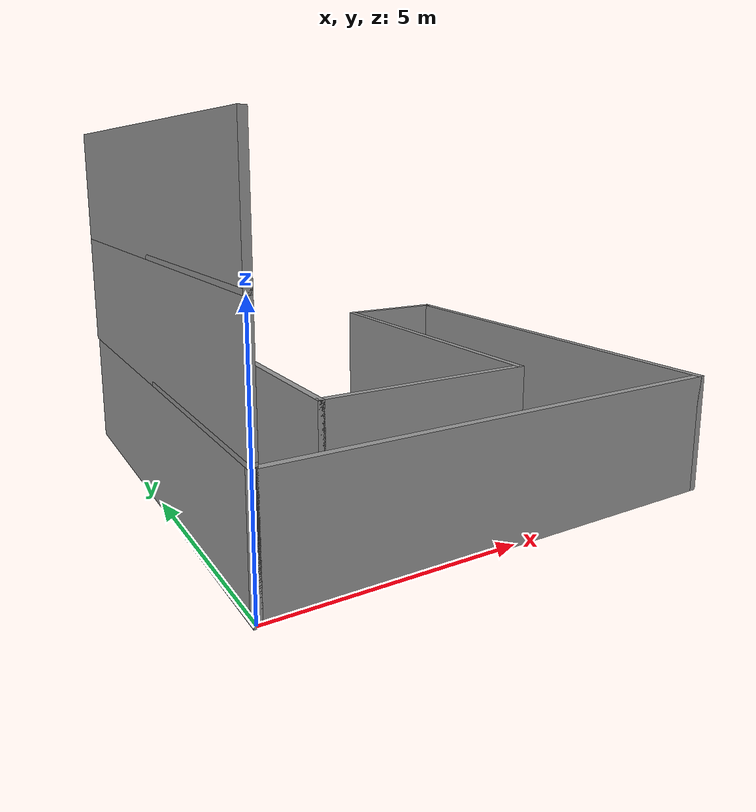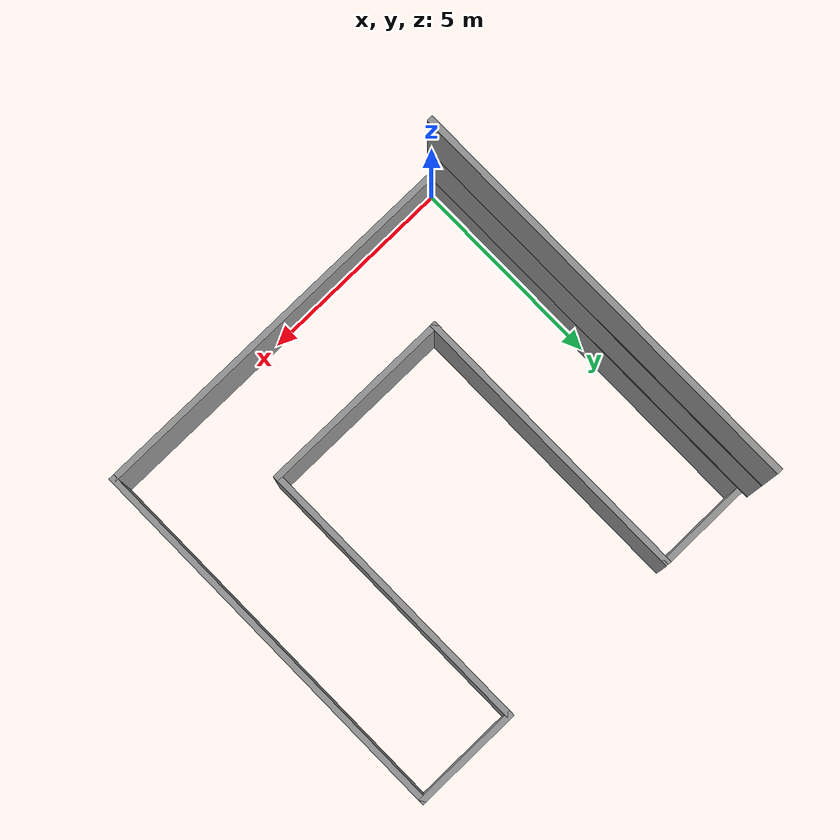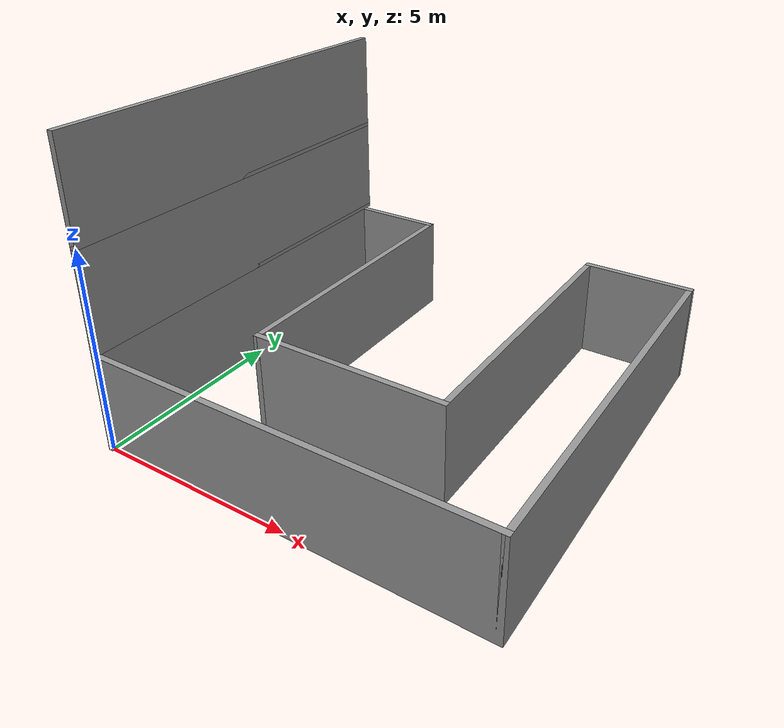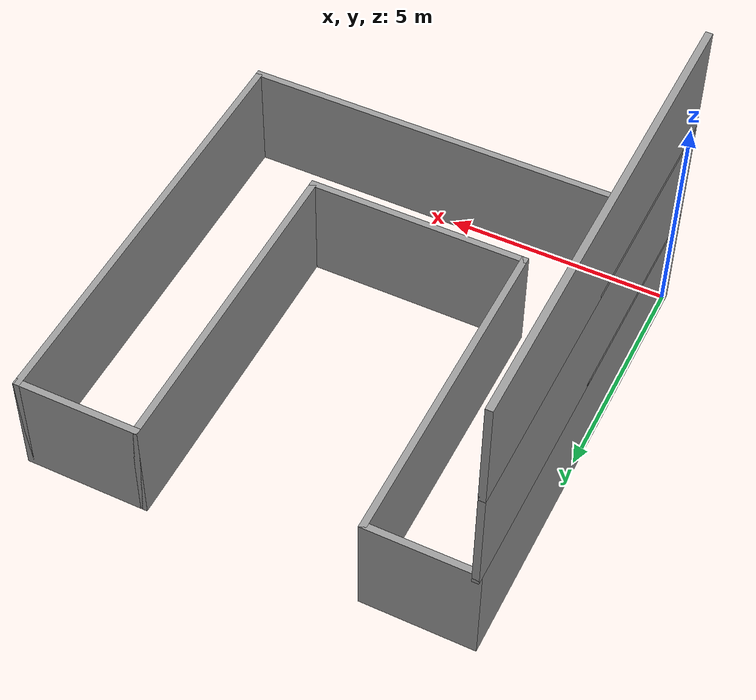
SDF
<?xml version='1.0'?>
<sdf version='1.7'>
  <model name='mybuilding'>
    <pose>4.925 4.925 0 0 -0 0</pose>
    <link name='Floor_0'>
      <collision name='Floor_0_Collision'>
        <geometry>
          <box>
            <size>0.15 10.15 0.1</size>
          </box>
        </geometry>
        <pose>0 0 0.05 0 -0 0</pose>
      </collision>
      <visual name='Floor_0_Visual'>
        <pose>0 0 0.05 0 -0 0</pose>
        <geometry>
          <box>
            <size>0.15 10.15 0.1</size>
          </box>
        </geometry>
        <material>
          <script>
            <uri>file://media/materials/scripts/gazebo.material</uri>
            <name>Gazebo/Grey</name>
          </script>
          <ambient>1 1 1 1</ambient>
        </material>
        <meta>
          <layer>1</layer>
        </meta>
      </visual>
      <pose>-4.925 0.075 2.5 0 -0 0</pose>
    </link>
    <link name='Floor_1'>
      <collision name='Floor_1_Collision'>
        <geometry>
          <box>
            <size>0.15 10.15 0.1</size>
          </box>
        </geometry>
        <pose>0 0 0.05 0 -0 0</pose>
      </collision>
      <visual name='Floor_1_Visual'>
        <pose>0 0 0.05 0 -0 0</pose>
        <geometry>
          <box>
            <size>0.15 10.15 0.1</size>
          </box>
        </geometry>
        <material>
          <script>
            <uri>file://media/materials/scripts/gazebo.material</uri>
            <name>Gazebo/Grey</name>
          </script>
          <ambient>1 1 1 1</ambient>
        </material>
        <meta>
          <layer>2</layer>
        </meta>
      </visual>
      <pose>-4.925 0.075 5 0 -0 0</pose>
    </link>
    <link name='Wall_0'>
      <collision name='Wall_0_Collision'>
        <geometry>
          <box>
            <size>10 0.15 2.5</size>
          </box>
        </geometry>
        <pose>0 0 1.25 0 -0 0</pose>
      </collision>
      <visual name='Wall_0_Visual'>
        <pose>0 0 1.25 0 -0 0</pose>
        <geometry>
          <box>
            <size>10 0.15 2.5</size>
          </box>
        </geometry>
        <material>
          <script>
            <uri>file://media/materials/scripts/gazebo.material</uri>
            <name>Gazebo/Grey</name>
          </script>
          <ambient>1 1 1 1</ambient>
        </material>
        <meta>
          <layer>0</layer>
        </meta>
      </visual>
      <pose>-4.925 -0 0 0 -0 1.5708</pose>
    </link>
    <link name='Wall_11'>
      <collision name='Wall_11_Collision'>
        <geometry>
          <box>
            <size>10.15 0.15 2.5</size>
          </box>
        </geometry>
        <pose>0 0 1.25 0 -0 0</pose>
      </collision>
      <visual name='Wall_11_Visual'>
        <pose>0 0 1.25 0 -0 0</pose>
        <geometry>
          <box>
            <size>10.15 0.15 2.5</size>
          </box>
        </geometry>
        <material>
          <script>
            <uri>file://media/materials/scripts/gazebo.material</uri>
            <name>Gazebo/Grey</name>
          </script>
          <ambient>1 1 1 1</ambient>
        </material>
        <meta>
          <layer>1</layer>
        </meta>
      </visual>
      <pose>-4.925 0.075 2.5 0 -0 1.5708</pose>
    </link>
    <link name='Wall_12'>
      <collision name='Wall_12_Collision'>
        <geometry>
          <box>
            <size>10.15 0.15 2.5</size>
          </box>
        </geometry>
        <pose>0 0 1.25 0 -0 0</pose>
      </collision>
      <visual name='Wall_12_Visual'>
        <pose>0 0 1.25 0 -0 0</pose>
        <geometry>
          <box>
            <size>10.15 0.15 2.5</size>
          </box>
        </geometry>
        <material>
          <script>
            <uri>file://media/materials/scripts/gazebo.material</uri>
            <name>Gazebo/Grey</name>
          </script>
          <ambient>1 1 1 1</ambient>
        </material>
        <meta>
          <layer>2</layer>
        </meta>
      </visual>
      <pose>-4.925 0.075 5 0 -0 1.5708</pose>
    </link>
    <link name='Wall_29'>
      <collision name='Wall_29_Collision'>
        <geometry>
          <box>
            <size>10 0.15 2.5</size>
          </box>
        </geometry>
        <pose>0 0 1.25 0 -0 0</pose>
      </collision>
      <visual name='Wall_29_Visual'>
        <pose>0 0 1.25 0 -0 0</pose>
        <geometry>
          <box>
            <size>10 0.15 2.5</size>
          </box>
        </geometry>
        <material>
          <script>
            <uri>file://media/materials/scripts/gazebo.material</uri>
            <name>Gazebo/Grey</name>
          </script>
          <ambient>1 1 1 1</ambient>
        </material>
        <meta>
          <layer>0</layer>
        </meta>
      </visual>
      <pose>-0 -4.925 0 0 -0 0</pose>
    </link>
    <link name='Wall_31'>
      <collision name='Wall_31_Collision'>
        <geometry>
          <box>
            <size>10 0.15 2.5</size>
          </box>
        </geometry>
        <pose>0 0 1.25 0 -0 0</pose>
      </collision>
      <visual name='Wall_31_Visual'>
        <pose>0 0 1.25 0 -0 0</pose>
        <geometry>
          <box>
            <size>10 0.15 2.5</size>
          </box>
        </geometry>
        <material>
          <script>
            <uri>file://media/materials/scripts/gazebo.material</uri>
            <name>Gazebo/Grey</name>
          </script>
          <ambient>1 1 1 1</ambient>
        </material>
        <meta>
          <layer>0</layer>
        </meta>
      </visual>
      <pose>4.925 -0 0 0 -0 1.5708</pose>
    </link>
    <link name='Wall_33'>
      <collision name='Wall_33_Collision'>
        <geometry>
          <box>
            <size>2.5 0.15 2.5</size>
          </box>
        </geometry>
        <pose>0 0 1.25 0 -0 0</pose>
      </collision>
      <visual name='Wall_33_Visual'>
        <pose>0 0 1.25 0 -0 0</pose>
        <geometry>
          <box>
            <size>2.5 0.15 2.5</size>
          </box>
        </geometry>
        <material>
          <script>
            <uri>file://media/materials/scripts/gazebo.material</uri>
            <name>Gazebo/Grey</name>
          </script>
          <ambient>1 1 1 1</ambient>
        </material>
        <meta>
          <layer>0</layer>
        </meta>
      </visual>
      <pose>-3.75 4.925 0 0 -0 0</pose>
    </link>
    <link name='Wall_35'>
      <collision name='Wall_35_Collision'>
        <geometry>
          <box>
            <size>7.5 0.15 2.5</size>
          </box>
        </geometry>
        <pose>0 0 1.25 0 -0 0</pose>
      </collision>
      <visual name='Wall_35_Visual'>
        <pose>0 0 1.25 0 -0 0</pose>
        <geometry>
          <box>
            <size>7.5 0.15 2.5</size>
          </box>
        </geometry>
        <material>
          <script>
            <uri>file://media/materials/scripts/gazebo.material</uri>
            <name>Gazebo/Grey</name>
          </script>
          <ambient>1 1 1 1</ambient>
        </material>
        <meta>
          <layer>0</layer>
        </meta>
      </visual>
      <pose>-2.575 1.25 0 0 -0 -1.5708</pose>
    </link>
    <link name='Wall_37'>
      <collision name='Wall_37_Collision'>
        <geometry>
          <box>
            <size>5 0.15 2.5</size>
          </box>
        </geometry>
        <pose>0 0 1.25 0 -0 0</pose>
      </collision>
      <visual name='Wall_37_Visual'>
        <pose>0 0 1.25 0 -0 0</pose>
        <geometry>
          <box>
            <size>5 0.15 2.5</size>
          </box>
        </geometry>
        <material>
          <script>
            <uri>file://media/materials/scripts/gazebo.material</uri>
            <name>Gazebo/Grey</name>
          </script>
          <ambient>1 1 1 1</ambient>
        </material>
        <meta>
          <layer>0</layer>
        </meta>
      </visual>
      <pose>-0.15 -2.425 0 0 -0 0</pose>
    </link>
    <link name='Wall_42'>
      <collision name='Wall_42_Collision'>
        <geometry>
          <box>
            <size>7.5 0.15 2.5</size>
          </box>
        </geometry>
        <pose>0 0 1.25 0 -0 0</pose>
      </collision>
      <visual name='Wall_42_Visual'>
        <pose>0 0 1.25 0 -0 0</pose>
        <geometry>
          <box>
            <size>7.5 0.15 2.5</size>
          </box>
        </geometry>
        <material>
          <script>
            <uri>file://media/materials/scripts/gazebo.material</uri>
            <name>Gazebo/Grey</name>
          </script>
          <ambient>1 1 1 1</ambient>
        </material>
        <meta>
          <layer>0</layer>
        </meta>
      </visual>
      <pose>2.275 1.25 0 0 -0 1.5708</pose>
    </link>
    <link name='Wall_44'>
      <collision name='Wall_44_Collision'>
        <geometry>
          <box>
            <size>2.8 0.15 2.5</size>
          </box>
        </geometry>
        <pose>0 0 1.25 0 -0 0</pose>
      </collision>
      <visual name='Wall_44_Visual'>
        <pose>0 0 1.25 0 -0 0</pose>
        <geometry>
          <box>
            <size>2.8 0.15 2.5</size>
          </box>
        </geometry>
        <material>
          <script>
            <uri>file://media/materials/scripts/gazebo.material</uri>
            <name>Gazebo/Grey</name>
          </script>
          <ambient>1 1 1 1</ambient>
        </material>
        <meta>
          <layer>0</layer>
        </meta>
      </visual>
      <pose>3.6 4.925 0 0 -0 0</pose>
    </link>
    <static>1</static>
  </model>
</sdf>
